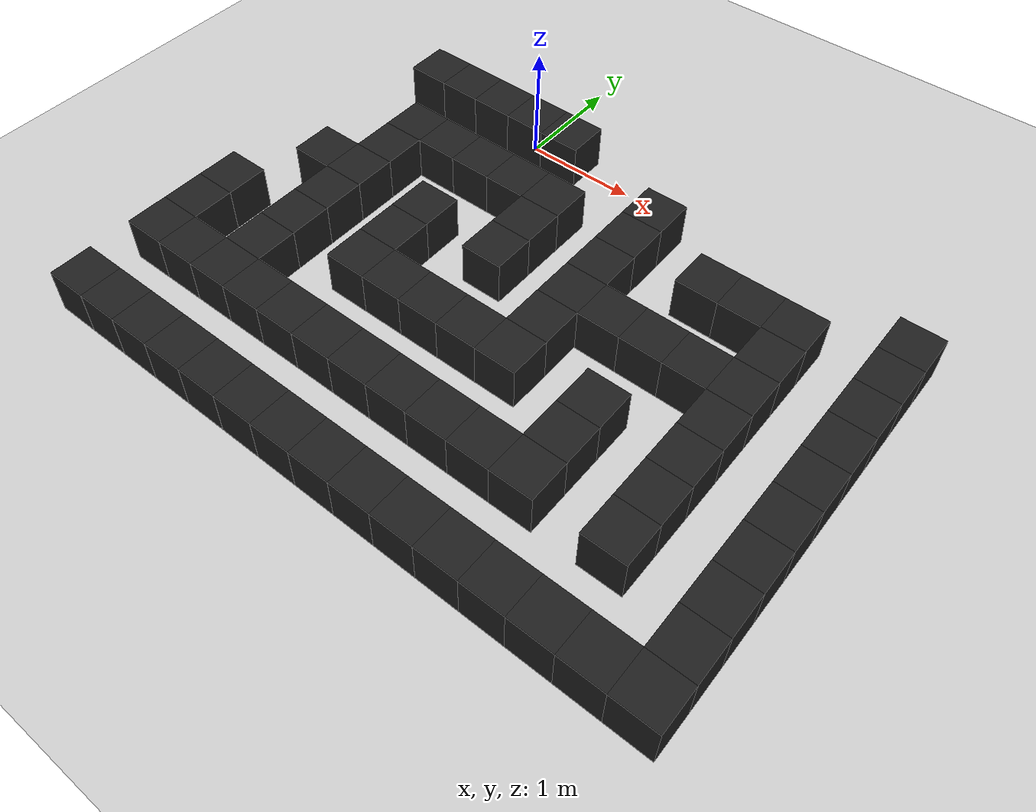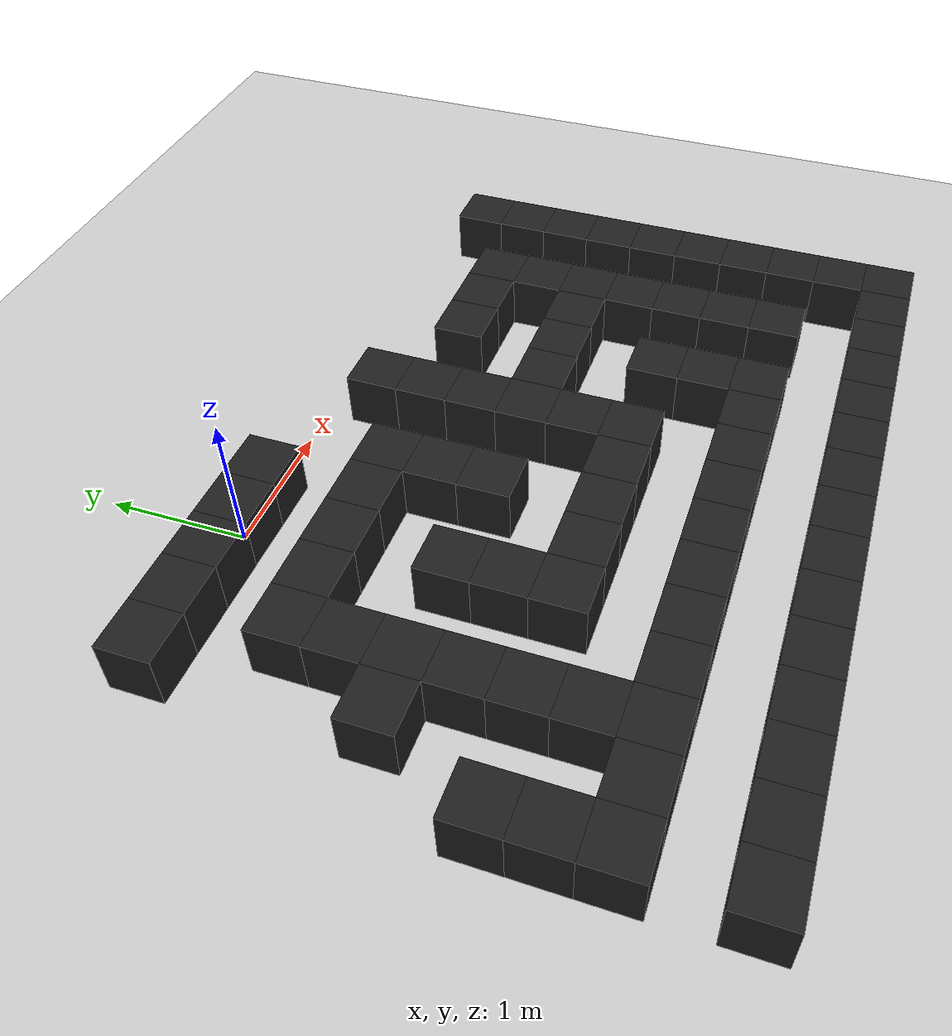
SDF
<sdf version="1.6">
 <world name="maze">
  <include><uri>model://models/sun</uri></include>
  <include><uri>model://models/ground_plane</uri></include>
  <model name="walls">
   <static>true</static>
   <link name="wall_12">
    <pose>3.75 -0.375 0.2 0 0 0</pose>
    <visual name="wall_12_visual">
     <geometry><box><size>0.375 0.375 0.4</size></box></geometry>
     <material>
      <script><uri>file://media/materials/scripts/gazebo.material</uri><name>Gazebo/Black</name></script>
     </material>
    </visual>
    <collision name="wall_12_collision"><geometry><box><size>0.375 0.375 0.4</size></box></geometry></collision>
   </link>
   <link name="wall_13">
    <pose>3.75 -0.75 0.2 0 0 0</pose>
    <visual name="wall_13_visual">
     <geometry><box><size>0.375 0.375 0.4</size></box></geometry>
     <material>
      <script><uri>file://media/materials/scripts/gazebo.material</uri><name>Gazebo/Black</name></script>
     </material>
    </visual>
    <collision name="wall_13_collision"><geometry><box><size>0.375 0.375 0.4</size></box></geometry></collision>
   </link>
   <link name="wall_14">
    <pose>3.75 -1.125 0.2 0 0 0</pose>
    <visual name="wall_14_visual">
     <geometry><box><size>0.375 0.375 0.4</size></box></geometry>
     <material>
      <script><uri>file://media/materials/scripts/gazebo.material</uri><name>Gazebo/Black</name></script>
     </material>
    </visual>
    <collision name="wall_14_collision"><geometry><box><size>0.375 0.375 0.4</size></box></geometry></collision>
   </link>
   <link name="wall_15">
    <pose>3.75 -1.5 0.2 0 0 0</pose>
    <visual name="wall_15_visual">
     <geometry><box><size>0.375 0.375 0.4</size></box></geometry>
     <material>
      <script><uri>file://media/materials/scripts/gazebo.material</uri><name>Gazebo/Black</name></script>
     </material>
    </visual>
    <collision name="wall_15_collision"><geometry><box><size>0.375 0.375 0.4</size></box></geometry></collision>
   </link>
   <link name="wall_16">
    <pose>3.75 -1.875 0.2 0 0 0</pose>
    <visual name="wall_16_visual">
     <geometry><box><size>0.375 0.375 0.4</size></box></geometry>
     <material>
      <script><uri>file://media/materials/scripts/gazebo.material</uri><name>Gazebo/Black</name></script>
     </material>
    </visual>
    <collision name="wall_16_collision"><geometry><box><size>0.375 0.375 0.4</size></box></geometry></collision>
   </link>
   <link name="wall_17">
    <pose>3.75 -2.25 0.2 0 0 0</pose>
    <visual name="wall_17_visual">
     <geometry><box><size>0.375 0.375 0.4</size></box></geometry>
     <material>
      <script><uri>file://media/materials/scripts/gazebo.material</uri><name>Gazebo/Black</name></script>
     </material>
    </visual>
    <collision name="wall_17_collision"><geometry><box><size>0.375 0.375 0.4</size></box></geometry></collision>
   </link>
   <link name="wall_18">
    <pose>3.75 -2.625 0.2 0 0 0</pose>
    <visual name="wall_18_visual">
     <geometry><box><size>0.375 0.375 0.4</size></box></geometry>
     <material>
      <script><uri>file://media/materials/scripts/gazebo.material</uri><name>Gazebo/Black</name></script>
     </material>
    </visual>
    <collision name="wall_18_collision"><geometry><box><size>0.375 0.375 0.4</size></box></geometry></collision>
   </link>
   <link name="wall_19">
    <pose>3.75 -3.0 0.2 0 0 0</pose>
    <visual name="wall_19_visual">
     <geometry><box><size>0.375 0.375 0.4</size></box></geometry>
     <material>
      <script><uri>file://media/materials/scripts/gazebo.material</uri><name>Gazebo/Black</name></script>
     </material>
    </visual>
    <collision name="wall_19_collision"><geometry><box><size>0.375 0.375 0.4</size></box></geometry></collision>
   </link>
   <link name="wall_20">
    <pose>3.75 -3.375 0.2 0 0 0</pose>
    <visual name="wall_20_visual">
     <geometry><box><size>0.375 0.375 0.4</size></box></geometry>
     <material>
      <script><uri>file://media/materials/scripts/gazebo.material</uri><name>Gazebo/Black</name></script>
     </material>
    </visual>
    <collision name="wall_20_collision"><geometry><box><size>0.375 0.375 0.4</size></box></geometry></collision>
   </link>
   <link name="wall_21">
    <pose>3.75 -3.75 0.2 0 0 0</pose>
    <visual name="wall_21_visual">
     <geometry><box><size>0.375 0.375 0.4</size></box></geometry>
     <material>
      <script><uri>file://media/materials/scripts/gazebo.material</uri><name>Gazebo/Black</name></script>
     </material>
    </visual>
    <collision name="wall_21_collision"><geometry><box><size>0.375 0.375 0.4</size></box></geometry></collision>
   </link>
   <link name="wall_25">
    <pose>3.375 -3.75 0.2 0 0 0</pose>
    <visual name="wall_25_visual">
     <geometry><box><size>0.375 0.375 0.4</size></box></geometry>
     <material>
      <script><uri>file://media/materials/scripts/gazebo.material</uri><name>Gazebo/Black</name></script>
     </material>
    </visual>
    <collision name="wall_25_collision"><geometry><box><size>0.375 0.375 0.4</size></box></geometry></collision>
   </link>
   <link name="wall_34">
    <pose>3.0 -0.75 0.2 0 0 0</pose>
    <visual name="wall_34_visual">
     <geometry><box><size>0.375 0.375 0.4</size></box></geometry>
     <material>
      <script><uri>file://media/materials/scripts/gazebo.material</uri><name>Gazebo/Black</name></script>
     </material>
    </visual>
    <collision name="wall_34_collision"><geometry><box><size>0.375 0.375 0.4</size></box></geometry></collision>
   </link>
   <link name="wall_35">
    <pose>3.0 -1.125 0.2 0 0 0</pose>
    <visual name="wall_35_visual">
     <geometry><box><size>0.375 0.375 0.4</size></box></geometry>
     <material>
      <script><uri>file://media/materials/scripts/gazebo.material</uri><name>Gazebo/Black</name></script>
     </material>
    </visual>
    <collision name="wall_35_collision"><geometry><box><size>0.375 0.375 0.4</size></box></geometry></collision>
   </link>
   <link name="wall_36">
    <pose>3.0 -1.5 0.2 0 0 0</pose>
    <visual name="wall_36_visual">
     <geometry><box><size>0.375 0.375 0.4</size></box></geometry>
     <material>
      <script><uri>file://media/materials/scripts/gazebo.material</uri><name>Gazebo/Black</name></script>
     </material>
    </visual>
    <collision name="wall_36_collision"><geometry><box><size>0.375 0.375 0.4</size></box></geometry></collision>
   </link>
   <link name="wall_37">
    <pose>3.0 -1.875 0.2 0 0 0</pose>
    <visual name="wall_37_visual">
     <geometry><box><size>0.375 0.375 0.4</size></box></geometry>
     <material>
      <script><uri>file://media/materials/scripts/gazebo.material</uri><name>Gazebo/Black</name></script>
     </material>
    </visual>
    <collision name="wall_37_collision"><geometry><box><size>0.375 0.375 0.4</size></box></geometry></collision>
   </link>
   <link name="wall_38">
    <pose>3.0 -2.25 0.2 0 0 0</pose>
    <visual name="wall_38_visual">
     <geometry><box><size>0.375 0.375 0.4</size></box></geometry>
     <material>
      <script><uri>file://media/materials/scripts/gazebo.material</uri><name>Gazebo/Black</name></script>
     </material>
    </visual>
    <collision name="wall_38_collision"><geometry><box><size>0.375 0.375 0.4</size></box></geometry></collision>
   </link>
   <link name="wall_39">
    <pose>3.0 -2.625 0.2 0 0 0</pose>
    <visual name="wall_39_visual">
     <geometry><box><size>0.375 0.375 0.4</size></box></geometry>
     <material>
      <script><uri>file://media/materials/scripts/gazebo.material</uri><name>Gazebo/Black</name></script>
     </material>
    </visual>
    <collision name="wall_39_collision"><geometry><box><size>0.375 0.375 0.4</size></box></geometry></collision>
   </link>
   <link name="wall_40">
    <pose>3.0 -3.0 0.2 0 0 0</pose>
    <visual name="wall_40_visual">
     <geometry><box><size>0.375 0.375 0.4</size></box></geometry>
     <material>
      <script><uri>file://media/materials/scripts/gazebo.material</uri><name>Gazebo/Black</name></script>
     </material>
    </visual>
    <collision name="wall_40_collision"><geometry><box><size>0.375 0.375 0.4</size></box></geometry></collision>
   </link>
   <link name="wall_41">
    <pose>3.0 -3.75 0.2 0 0 0</pose>
    <visual name="wall_41_visual">
     <geometry><box><size>0.375 0.375 0.4</size></box></geometry>
     <material>
      <script><uri>file://media/materials/scripts/gazebo.material</uri><name>Gazebo/Black</name></script>
     </material>
    </visual>
    <collision name="wall_41_collision"><geometry><box><size>0.375 0.375 0.4</size></box></geometry></collision>
   </link>
   <link name="wall_46">
    <pose>2.625 -0.75 0.2 0 0 0</pose>
    <visual name="wall_46_visual">
     <geometry><box><size>0.375 0.375 0.4</size></box></geometry>
     <material>
      <script><uri>file://media/materials/scripts/gazebo.material</uri><name>Gazebo/Black</name></script>
     </material>
    </visual>
    <collision name="wall_46_collision"><geometry><box><size>0.375 0.375 0.4</size></box></geometry></collision>
   </link>
   <link name="wall_47">
    <pose>2.625 -1.5 0.2 0 0 0</pose>
    <visual name="wall_47_visual">
     <geometry><box><size>0.375 0.375 0.4</size></box></geometry>
     <material>
      <script><uri>file://media/materials/scripts/gazebo.material</uri><name>Gazebo/Black</name></script>
     </material>
    </visual>
    <collision name="wall_47_collision"><geometry><box><size>0.375 0.375 0.4</size></box></geometry></collision>
   </link>
   <link name="wall_48">
    <pose>2.625 -3.75 0.2 0 0 0</pose>
    <visual name="wall_48_visual">
     <geometry><box><size>0.375 0.375 0.4</size></box></geometry>
     <material>
      <script><uri>file://media/materials/scripts/gazebo.material</uri><name>Gazebo/Black</name></script>
     </material>
    </visual>
    <collision name="wall_48_collision"><geometry><box><size>0.375 0.375 0.4</size></box></geometry></collision>
   </link>
   <link name="wall_58">
    <pose>2.25 -0.75 0.2 0 0 0</pose>
    <visual name="wall_58_visual">
     <geometry><box><size>0.375 0.375 0.4</size></box></geometry>
     <material>
      <script><uri>file://media/materials/scripts/gazebo.material</uri><name>Gazebo/Black</name></script>
     </material>
    </visual>
    <collision name="wall_58_collision"><geometry><box><size>0.375 0.375 0.4</size></box></geometry></collision>
   </link>
   <link name="wall_59">
    <pose>2.25 -1.5 0.2 0 0 0</pose>
    <visual name="wall_59_visual">
     <geometry><box><size>0.375 0.375 0.4</size></box></geometry>
     <material>
      <script><uri>file://media/materials/scripts/gazebo.material</uri><name>Gazebo/Black</name></script>
     </material>
    </visual>
    <collision name="wall_59_collision"><geometry><box><size>0.375 0.375 0.4</size></box></geometry></collision>
   </link>
   <link name="wall_60">
    <pose>2.25 -2.25 0.2 0 0 0</pose>
    <visual name="wall_60_visual">
     <geometry><box><size>0.375 0.375 0.4</size></box></geometry>
     <material>
      <script><uri>file://media/materials/scripts/gazebo.material</uri><name>Gazebo/Black</name></script>
     </material>
    </visual>
    <collision name="wall_60_collision"><geometry><box><size>0.375 0.375 0.4</size></box></geometry></collision>
   </link>
   <link name="wall_61">
    <pose>2.25 -2.625 0.2 0 0 0</pose>
    <visual name="wall_61_visual">
     <geometry><box><size>0.375 0.375 0.4</size></box></geometry>
     <material>
      <script><uri>file://media/materials/scripts/gazebo.material</uri><name>Gazebo/Black</name></script>
     </material>
    </visual>
    <collision name="wall_61_collision"><geometry><box><size>0.375 0.375 0.4</size></box></geometry></collision>
   </link>
   <link name="wall_62">
    <pose>2.25 -3.0 0.2 0 0 0</pose>
    <visual name="wall_62_visual">
     <geometry><box><size>0.375 0.375 0.4</size></box></geometry>
     <material>
      <script><uri>file://media/materials/scripts/gazebo.material</uri><name>Gazebo/Black</name></script>
     </material>
    </visual>
    <collision name="wall_62_collision"><geometry><box><size>0.375 0.375 0.4</size></box></geometry></collision>
   </link>
   <link name="wall_63">
    <pose>2.25 -3.75 0.2 0 0 0</pose>
    <visual name="wall_63_visual">
     <geometry><box><size>0.375 0.375 0.4</size></box></geometry>
     <material>
      <script><uri>file://media/materials/scripts/gazebo.material</uri><name>Gazebo/Black</name></script>
     </material>
    </visual>
    <collision name="wall_63_collision"><geometry><box><size>0.375 0.375 0.4</size></box></geometry></collision>
   </link>
   <link name="wall_67">
    <pose>1.875 -1.5 0.2 0 0 0</pose>
    <visual name="wall_67_visual">
     <geometry><box><size>0.375 0.375 0.4</size></box></geometry>
     <material>
      <script><uri>file://media/materials/scripts/gazebo.material</uri><name>Gazebo/Black</name></script>
     </material>
    </visual>
    <collision name="wall_67_collision"><geometry><box><size>0.375 0.375 0.4</size></box></geometry></collision>
   </link>
   <link name="wall_68">
    <pose>1.875 -3.0 0.2 0 0 0</pose>
    <visual name="wall_68_visual">
     <geometry><box><size>0.375 0.375 0.4</size></box></geometry>
     <material>
      <script><uri>file://media/materials/scripts/gazebo.material</uri><name>Gazebo/Black</name></script>
     </material>
    </visual>
    <collision name="wall_68_collision"><geometry><box><size>0.375 0.375 0.4</size></box></geometry></collision>
   </link>
   <link name="wall_69">
    <pose>1.875 -3.75 0.2 0 0 0</pose>
    <visual name="wall_69_visual">
     <geometry><box><size>0.375 0.375 0.4</size></box></geometry>
     <material>
      <script><uri>file://media/materials/scripts/gazebo.material</uri><name>Gazebo/Black</name></script>
     </material>
    </visual>
    <collision name="wall_69_collision"><geometry><box><size>0.375 0.375 0.4</size></box></geometry></collision>
   </link>
   <link name="wall_78">
    <pose>1.5 -0.375 0.2 0 0 0</pose>
    <visual name="wall_78_visual">
     <geometry><box><size>0.375 0.375 0.4</size></box></geometry>
     <material>
      <script><uri>file://media/materials/scripts/gazebo.material</uri><name>Gazebo/Black</name></script>
     </material>
    </visual>
    <collision name="wall_78_collision"><geometry><box><size>0.375 0.375 0.4</size></box></geometry></collision>
   </link>
   <link name="wall_79">
    <pose>1.5 -0.75 0.2 0 0 0</pose>
    <visual name="wall_79_visual">
     <geometry><box><size>0.375 0.375 0.4</size></box></geometry>
     <material>
      <script><uri>file://media/materials/scripts/gazebo.material</uri><name>Gazebo/Black</name></script>
     </material>
    </visual>
    <collision name="wall_79_collision"><geometry><box><size>0.375 0.375 0.4</size></box></geometry></collision>
   </link>
   <link name="wall_80">
    <pose>1.5 -1.125 0.2 0 0 0</pose>
    <visual name="wall_80_visual">
     <geometry><box><size>0.375 0.375 0.4</size></box></geometry>
     <material>
      <script><uri>file://media/materials/scripts/gazebo.material</uri><name>Gazebo/Black</name></script>
     </material>
    </visual>
    <collision name="wall_80_collision"><geometry><box><size>0.375 0.375 0.4</size></box></geometry></collision>
   </link>
   <link name="wall_81">
    <pose>1.5 -1.5 0.2 0 0 0</pose>
    <visual name="wall_81_visual">
     <geometry><box><size>0.375 0.375 0.4</size></box></geometry>
     <material>
      <script><uri>file://media/materials/scripts/gazebo.material</uri><name>Gazebo/Black</name></script>
     </material>
    </visual>
    <collision name="wall_81_collision"><geometry><box><size>0.375 0.375 0.4</size></box></geometry></collision>
   </link>
   <link name="wall_82">
    <pose>1.5 -1.875 0.2 0 0 0</pose>
    <visual name="wall_82_visual">
     <geometry><box><size>0.375 0.375 0.4</size></box></geometry>
     <material>
      <script><uri>file://media/materials/scripts/gazebo.material</uri><name>Gazebo/Black</name></script>
     </material>
    </visual>
    <collision name="wall_82_collision"><geometry><box><size>0.375 0.375 0.4</size></box></geometry></collision>
   </link>
   <link name="wall_83">
    <pose>1.5 -2.25 0.2 0 0 0</pose>
    <visual name="wall_83_visual">
     <geometry><box><size>0.375 0.375 0.4</size></box></geometry>
     <material>
      <script><uri>file://media/materials/scripts/gazebo.material</uri><name>Gazebo/Black</name></script>
     </material>
    </visual>
    <collision name="wall_83_collision"><geometry><box><size>0.375 0.375 0.4</size></box></geometry></collision>
   </link>
   <link name="wall_84">
    <pose>1.5 -3.0 0.2 0 0 0</pose>
    <visual name="wall_84_visual">
     <geometry><box><size>0.375 0.375 0.4</size></box></geometry>
     <material>
      <script><uri>file://media/materials/scripts/gazebo.material</uri><name>Gazebo/Black</name></script>
     </material>
    </visual>
    <collision name="wall_84_collision"><geometry><box><size>0.375 0.375 0.4</size></box></geometry></collision>
   </link>
   <link name="wall_85">
    <pose>1.5 -3.75 0.2 0 0 0</pose>
    <visual name="wall_85_visual">
     <geometry><box><size>0.375 0.375 0.4</size></box></geometry>
     <material>
      <script><uri>file://media/materials/scripts/gazebo.material</uri><name>Gazebo/Black</name></script>
     </material>
    </visual>
    <collision name="wall_85_collision"><geometry><box><size>0.375 0.375 0.4</size></box></geometry></collision>
   </link>
   <link name="wall_90">
    <pose>1.125 -2.25 0.2 0 0 0</pose>
    <visual name="wall_90_visual">
     <geometry><box><size>0.375 0.375 0.4</size></box></geometry>
     <material>
      <script><uri>file://media/materials/scripts/gazebo.material</uri><name>Gazebo/Black</name></script>
     </material>
    </visual>
    <collision name="wall_90_collision"><geometry><box><size>0.375 0.375 0.4</size></box></geometry></collision>
   </link>
   <link name="wall_91">
    <pose>1.125 -3.0 0.2 0 0 0</pose>
    <visual name="wall_91_visual">
     <geometry><box><size>0.375 0.375 0.4</size></box></geometry>
     <material>
      <script><uri>file://media/materials/scripts/gazebo.material</uri><name>Gazebo/Black</name></script>
     </material>
    </visual>
    <collision name="wall_91_collision"><geometry><box><size>0.375 0.375 0.4</size></box></geometry></collision>
   </link>
   <link name="wall_92">
    <pose>1.125 -3.75 0.2 0 0 0</pose>
    <visual name="wall_92_visual">
     <geometry><box><size>0.375 0.375 0.4</size></box></geometry>
     <material>
      <script><uri>file://media/materials/scripts/gazebo.material</uri><name>Gazebo/Black</name></script>
     </material>
    </visual>
    <collision name="wall_92_collision"><geometry><box><size>0.375 0.375 0.4</size></box></geometry></collision>
   </link>
   <link name="wall_100">
    <pose>0.75 -0.75 0.2 0 0 0</pose>
    <visual name="wall_100_visual">
     <geometry><box><size>0.375 0.375 0.4</size></box></geometry>
     <material>
      <script><uri>file://media/materials/scripts/gazebo.material</uri><name>Gazebo/Black</name></script>
     </material>
    </visual>
    <collision name="wall_100_collision"><geometry><box><size>0.375 0.375 0.4</size></box></geometry></collision>
   </link>
   <link name="wall_101">
    <pose>0.75 -1.125 0.2 0 0 0</pose>
    <visual name="wall_101_visual">
     <geometry><box><size>0.375 0.375 0.4</size></box></geometry>
     <material>
      <script><uri>file://media/materials/scripts/gazebo.material</uri><name>Gazebo/Black</name></script>
     </material>
    </visual>
    <collision name="wall_101_collision"><geometry><box><size>0.375 0.375 0.4</size></box></geometry></collision>
   </link>
   <link name="wall_102">
    <pose>0.75 -1.5 0.2 0 0 0</pose>
    <visual name="wall_102_visual">
     <geometry><box><size>0.375 0.375 0.4</size></box></geometry>
     <material>
      <script><uri>file://media/materials/scripts/gazebo.material</uri><name>Gazebo/Black</name></script>
     </material>
    </visual>
    <collision name="wall_102_collision"><geometry><box><size>0.375 0.375 0.4</size></box></geometry></collision>
   </link>
   <link name="wall_103">
    <pose>0.75 -2.25 0.2 0 0 0</pose>
    <visual name="wall_103_visual">
     <geometry><box><size>0.375 0.375 0.4</size></box></geometry>
     <material>
      <script><uri>file://media/materials/scripts/gazebo.material</uri><name>Gazebo/Black</name></script>
     </material>
    </visual>
    <collision name="wall_103_collision"><geometry><box><size>0.375 0.375 0.4</size></box></geometry></collision>
   </link>
   <link name="wall_104">
    <pose>0.75 -3.0 0.2 0 0 0</pose>
    <visual name="wall_104_visual">
     <geometry><box><size>0.375 0.375 0.4</size></box></geometry>
     <material>
      <script><uri>file://media/materials/scripts/gazebo.material</uri><name>Gazebo/Black</name></script>
     </material>
    </visual>
    <collision name="wall_104_collision"><geometry><box><size>0.375 0.375 0.4</size></box></geometry></collision>
   </link>
   <link name="wall_105">
    <pose>0.75 -3.75 0.2 0 0 0</pose>
    <visual name="wall_105_visual">
     <geometry><box><size>0.375 0.375 0.4</size></box></geometry>
     <material>
      <script><uri>file://media/materials/scripts/gazebo.material</uri><name>Gazebo/Black</name></script>
     </material>
    </visual>
    <collision name="wall_105_collision"><geometry><box><size>0.375 0.375 0.4</size></box></geometry></collision>
   </link>
   <link name="wall_110">
    <pose>0.375 0.0 0.2 0 0 0</pose>
    <visual name="wall_110_visual">
     <geometry><box><size>0.375 0.375 0.4</size></box></geometry>
     <material>
      <script><uri>file://media/materials/scripts/gazebo.material</uri><name>Gazebo/Black</name></script>
     </material>
    </visual>
    <collision name="wall_110_collision"><geometry><box><size>0.375 0.375 0.4</size></box></geometry></collision>
   </link>
   <link name="wall_111">
    <pose>0.375 -0.75 0.2 0 0 0</pose>
    <visual name="wall_111_visual">
     <geometry><box><size>0.375 0.375 0.4</size></box></geometry>
     <material>
      <script><uri>file://media/materials/scripts/gazebo.material</uri><name>Gazebo/Black</name></script>
     </material>
    </visual>
    <collision name="wall_111_collision"><geometry><box><size>0.375 0.375 0.4</size></box></geometry></collision>
   </link>
   <link name="wall_112">
    <pose>0.375 -2.25 0.2 0 0 0</pose>
    <visual name="wall_112_visual">
     <geometry><box><size>0.375 0.375 0.4</size></box></geometry>
     <material>
      <script><uri>file://media/materials/scripts/gazebo.material</uri><name>Gazebo/Black</name></script>
     </material>
    </visual>
    <collision name="wall_112_collision"><geometry><box><size>0.375 0.375 0.4</size></box></geometry></collision>
   </link>
   <link name="wall_113">
    <pose>0.375 -3.0 0.2 0 0 0</pose>
    <visual name="wall_113_visual">
     <geometry><box><size>0.375 0.375 0.4</size></box></geometry>
     <material>
      <script><uri>file://media/materials/scripts/gazebo.material</uri><name>Gazebo/Black</name></script>
     </material>
    </visual>
    <collision name="wall_113_collision"><geometry><box><size>0.375 0.375 0.4</size></box></geometry></collision>
   </link>
   <link name="wall_114">
    <pose>0.375 -3.75 0.2 0 0 0</pose>
    <visual name="wall_114_visual">
     <geometry><box><size>0.375 0.375 0.4</size></box></geometry>
     <material>
      <script><uri>file://media/materials/scripts/gazebo.material</uri><name>Gazebo/Black</name></script>
     </material>
    </visual>
    <collision name="wall_114_collision"><geometry><box><size>0.375 0.375 0.4</size></box></geometry></collision>
   </link>
   <link name="wall_123">
    <pose>0.0 0.0 0.2 0 0 0</pose>
    <visual name="wall_123_visual">
     <geometry><box><size>0.375 0.375 0.4</size></box></geometry>
     <material>
      <script><uri>file://media/materials/scripts/gazebo.material</uri><name>Gazebo/Black</name></script>
     </material>
    </visual>
    <collision name="wall_123_collision"><geometry><box><size>0.375 0.375 0.4</size></box></geometry></collision>
   </link>
   <link name="wall_124">
    <pose>0.0 -0.75 0.2 0 0 0</pose>
    <visual name="wall_124_visual">
     <geometry><box><size>0.375 0.375 0.4</size></box></geometry>
     <material>
      <script><uri>file://media/materials/scripts/gazebo.material</uri><name>Gazebo/Black</name></script>
     </material>
    </visual>
    <collision name="wall_124_collision"><geometry><box><size>0.375 0.375 0.4</size></box></geometry></collision>
   </link>
   <link name="wall_125">
    <pose>0.0 -1.5 0.2 0 0 0</pose>
    <visual name="wall_125_visual">
     <geometry><box><size>0.375 0.375 0.4</size></box></geometry>
     <material>
      <script><uri>file://media/materials/scripts/gazebo.material</uri><name>Gazebo/Black</name></script>
     </material>
    </visual>
    <collision name="wall_125_collision"><geometry><box><size>0.375 0.375 0.4</size></box></geometry></collision>
   </link>
   <link name="wall_126">
    <pose>0.0 -1.875 0.2 0 0 0</pose>
    <visual name="wall_126_visual">
     <geometry><box><size>0.375 0.375 0.4</size></box></geometry>
     <material>
      <script><uri>file://media/materials/scripts/gazebo.material</uri><name>Gazebo/Black</name></script>
     </material>
    </visual>
    <collision name="wall_126_collision"><geometry><box><size>0.375 0.375 0.4</size></box></geometry></collision>
   </link>
   <link name="wall_127">
    <pose>0.0 -2.25 0.2 0 0 0</pose>
    <visual name="wall_127_visual">
     <geometry><box><size>0.375 0.375 0.4</size></box></geometry>
     <material>
      <script><uri>file://media/materials/scripts/gazebo.material</uri><name>Gazebo/Black</name></script>
     </material>
    </visual>
    <collision name="wall_127_collision"><geometry><box><size>0.375 0.375 0.4</size></box></geometry></collision>
   </link>
   <link name="wall_128">
    <pose>0.0 -3.0 0.2 0 0 0</pose>
    <visual name="wall_128_visual">
     <geometry><box><size>0.375 0.375 0.4</size></box></geometry>
     <material>
      <script><uri>file://media/materials/scripts/gazebo.material</uri><name>Gazebo/Black</name></script>
     </material>
    </visual>
    <collision name="wall_128_collision"><geometry><box><size>0.375 0.375 0.4</size></box></geometry></collision>
   </link>
   <link name="wall_129">
    <pose>0.0 -3.75 0.2 0 0 0</pose>
    <visual name="wall_129_visual">
     <geometry><box><size>0.375 0.375 0.4</size></box></geometry>
     <material>
      <script><uri>file://media/materials/scripts/gazebo.material</uri><name>Gazebo/Black</name></script>
     </material>
    </visual>
    <collision name="wall_129_collision"><geometry><box><size>0.375 0.375 0.4</size></box></geometry></collision>
   </link>
   <link name="wall_132">
    <pose>-0.375 0.0 0.2 0 0 0</pose>
    <visual name="wall_132_visual">
     <geometry><box><size>0.375 0.375 0.4</size></box></geometry>
     <material>
      <script><uri>file://media/materials/scripts/gazebo.material</uri><name>Gazebo/Black</name></script>
     </material>
    </visual>
    <collision name="wall_132_collision"><geometry><box><size>0.375 0.375 0.4</size></box></geometry></collision>
   </link>
   <link name="wall_133">
    <pose>-0.375 -0.75 0.2 0 0 0</pose>
    <visual name="wall_133_visual">
     <geometry><box><size>0.375 0.375 0.4</size></box></geometry>
     <material>
      <script><uri>file://media/materials/scripts/gazebo.material</uri><name>Gazebo/Black</name></script>
     </material>
    </visual>
    <collision name="wall_133_collision"><geometry><box><size>0.375 0.375 0.4</size></box></geometry></collision>
   </link>
   <link name="wall_134">
    <pose>-0.375 -3.0 0.2 0 0 0</pose>
    <visual name="wall_134_visual">
     <geometry><box><size>0.375 0.375 0.4</size></box></geometry>
     <material>
      <script><uri>file://media/materials/scripts/gazebo.material</uri><name>Gazebo/Black</name></script>
     </material>
    </visual>
    <collision name="wall_134_collision"><geometry><box><size>0.375 0.375 0.4</size></box></geometry></collision>
   </link>
   <link name="wall_135">
    <pose>-0.375 -3.75 0.2 0 0 0</pose>
    <visual name="wall_135_visual">
     <geometry><box><size>0.375 0.375 0.4</size></box></geometry>
     <material>
      <script><uri>file://media/materials/scripts/gazebo.material</uri><name>Gazebo/Black</name></script>
     </material>
    </visual>
    <collision name="wall_135_collision"><geometry><box><size>0.375 0.375 0.4</size></box></geometry></collision>
   </link>
   <link name="wall_143">
    <pose>-0.75 0.0 0.2 0 0 0</pose>
    <visual name="wall_143_visual">
     <geometry><box><size>0.375 0.375 0.4</size></box></geometry>
     <material>
      <script><uri>file://media/materials/scripts/gazebo.material</uri><name>Gazebo/Black</name></script>
     </material>
    </visual>
    <collision name="wall_143_collision"><geometry><box><size>0.375 0.375 0.4</size></box></geometry></collision>
   </link>
   <link name="wall_144">
    <pose>-0.75 -0.75 0.2 0 0 0</pose>
    <visual name="wall_144_visual">
     <geometry><box><size>0.375 0.375 0.4</size></box></geometry>
     <material>
      <script><uri>file://media/materials/scripts/gazebo.material</uri><name>Gazebo/Black</name></script>
     </material>
    </visual>
    <collision name="wall_144_collision"><geometry><box><size>0.375 0.375 0.4</size></box></geometry></collision>
   </link>
   <link name="wall_145">
    <pose>-0.75 -1.125 0.2 0 0 0</pose>
    <visual name="wall_145_visual">
     <geometry><box><size>0.375 0.375 0.4</size></box></geometry>
     <material>
      <script><uri>file://media/materials/scripts/gazebo.material</uri><name>Gazebo/Black</name></script>
     </material>
    </visual>
    <collision name="wall_145_collision"><geometry><box><size>0.375 0.375 0.4</size></box></geometry></collision>
   </link>
   <link name="wall_146">
    <pose>-0.75 -1.5 0.2 0 0 0</pose>
    <visual name="wall_146_visual">
     <geometry><box><size>0.375 0.375 0.4</size></box></geometry>
     <material>
      <script><uri>file://media/materials/scripts/gazebo.material</uri><name>Gazebo/Black</name></script>
     </material>
    </visual>
    <collision name="wall_146_collision"><geometry><box><size>0.375 0.375 0.4</size></box></geometry></collision>
   </link>
   <link name="wall_147">
    <pose>-0.75 -1.875 0.2 0 0 0</pose>
    <visual name="wall_147_visual">
     <geometry><box><size>0.375 0.375 0.4</size></box></geometry>
     <material>
      <script><uri>file://media/materials/scripts/gazebo.material</uri><name>Gazebo/Black</name></script>
     </material>
    </visual>
    <collision name="wall_147_collision"><geometry><box><size>0.375 0.375 0.4</size></box></geometry></collision>
   </link>
   <link name="wall_148">
    <pose>-0.75 -2.25 0.2 0 0 0</pose>
    <visual name="wall_148_visual">
     <geometry><box><size>0.375 0.375 0.4</size></box></geometry>
     <material>
      <script><uri>file://media/materials/scripts/gazebo.material</uri><name>Gazebo/Black</name></script>
     </material>
    </visual>
    <collision name="wall_148_collision"><geometry><box><size>0.375 0.375 0.4</size></box></geometry></collision>
   </link>
   <link name="wall_149">
    <pose>-0.75 -2.625 0.2 0 0 0</pose>
    <visual name="wall_149_visual">
     <geometry><box><size>0.375 0.375 0.4</size></box></geometry>
     <material>
      <script><uri>file://media/materials/scripts/gazebo.material</uri><name>Gazebo/Black</name></script>
     </material>
    </visual>
    <collision name="wall_149_collision"><geometry><box><size>0.375 0.375 0.4</size></box></geometry></collision>
   </link>
   <link name="wall_150">
    <pose>-0.75 -3.0 0.2 0 0 0</pose>
    <visual name="wall_150_visual">
     <geometry><box><size>0.375 0.375 0.4</size></box></geometry>
     <material>
      <script><uri>file://media/materials/scripts/gazebo.material</uri><name>Gazebo/Black</name></script>
     </material>
    </visual>
    <collision name="wall_150_collision"><geometry><box><size>0.375 0.375 0.4</size></box></geometry></collision>
   </link>
   <link name="wall_151">
    <pose>-0.75 -3.75 0.2 0 0 0</pose>
    <visual name="wall_151_visual">
     <geometry><box><size>0.375 0.375 0.4</size></box></geometry>
     <material>
      <script><uri>file://media/materials/scripts/gazebo.material</uri><name>Gazebo/Black</name></script>
     </material>
    </visual>
    <collision name="wall_151_collision"><geometry><box><size>0.375 0.375 0.4</size></box></geometry></collision>
   </link>
   <link name="wall_155">
    <pose>-1.125 0.0 0.2 0 0 0</pose>
    <visual name="wall_155_visual">
     <geometry><box><size>0.375 0.375 0.4</size></box></geometry>
     <material>
      <script><uri>file://media/materials/scripts/gazebo.material</uri><name>Gazebo/Black</name></script>
     </material>
    </visual>
    <collision name="wall_155_collision"><geometry><box><size>0.375 0.375 0.4</size></box></geometry></collision>
   </link>
   <link name="wall_156">
    <pose>-1.125 -1.5 0.2 0 0 0</pose>
    <visual name="wall_156_visual">
     <geometry><box><size>0.375 0.375 0.4</size></box></geometry>
     <material>
      <script><uri>file://media/materials/scripts/gazebo.material</uri><name>Gazebo/Black</name></script>
     </material>
    </visual>
    <collision name="wall_156_collision"><geometry><box><size>0.375 0.375 0.4</size></box></geometry></collision>
   </link>
   <link name="wall_157">
    <pose>-1.125 -3.0 0.2 0 0 0</pose>
    <visual name="wall_157_visual">
     <geometry><box><size>0.375 0.375 0.4</size></box></geometry>
     <material>
      <script><uri>file://media/materials/scripts/gazebo.material</uri><name>Gazebo/Black</name></script>
     </material>
    </visual>
    <collision name="wall_157_collision"><geometry><box><size>0.375 0.375 0.4</size></box></geometry></collision>
   </link>
   <link name="wall_158">
    <pose>-1.125 -3.75 0.2 0 0 0</pose>
    <visual name="wall_158_visual">
     <geometry><box><size>0.375 0.375 0.4</size></box></geometry>
     <material>
      <script><uri>file://media/materials/scripts/gazebo.material</uri><name>Gazebo/Black</name></script>
     </material>
    </visual>
    <collision name="wall_158_collision"><geometry><box><size>0.375 0.375 0.4</size></box></geometry></collision>
   </link>
   <link name="wall_168">
    <pose>-1.5 -2.25 0.2 0 0 0</pose>
    <visual name="wall_168_visual">
     <geometry><box><size>0.375 0.375 0.4</size></box></geometry>
     <material>
      <script><uri>file://media/materials/scripts/gazebo.material</uri><name>Gazebo/Black</name></script>
     </material>
    </visual>
    <collision name="wall_168_collision"><geometry><box><size>0.375 0.375 0.4</size></box></geometry></collision>
   </link>
   <link name="wall_169">
    <pose>-1.5 -2.625 0.2 0 0 0</pose>
    <visual name="wall_169_visual">
     <geometry><box><size>0.375 0.375 0.4</size></box></geometry>
     <material>
      <script><uri>file://media/materials/scripts/gazebo.material</uri><name>Gazebo/Black</name></script>
     </material>
    </visual>
    <collision name="wall_169_collision"><geometry><box><size>0.375 0.375 0.4</size></box></geometry></collision>
   </link>
   <link name="wall_170">
    <pose>-1.5 -3.0 0.2 0 0 0</pose>
    <visual name="wall_170_visual">
     <geometry><box><size>0.375 0.375 0.4</size></box></geometry>
     <material>
      <script><uri>file://media/materials/scripts/gazebo.material</uri><name>Gazebo/Black</name></script>
     </material>
    </visual>
    <collision name="wall_170_collision"><geometry><box><size>0.375 0.375 0.4</size></box></geometry></collision>
   </link>
   <link name="wall_171">
    <pose>-1.5 -3.75 0.2 0 0 0</pose>
    <visual name="wall_171_visual">
     <geometry><box><size>0.375 0.375 0.4</size></box></geometry>
     <material>
      <script><uri>file://media/materials/scripts/gazebo.material</uri><name>Gazebo/Black</name></script>
     </material>
    </visual>
    <collision name="wall_171_collision"><geometry><box><size>0.375 0.375 0.4</size></box></geometry></collision>
   </link>
  </model>
 </world>
</sdf>
